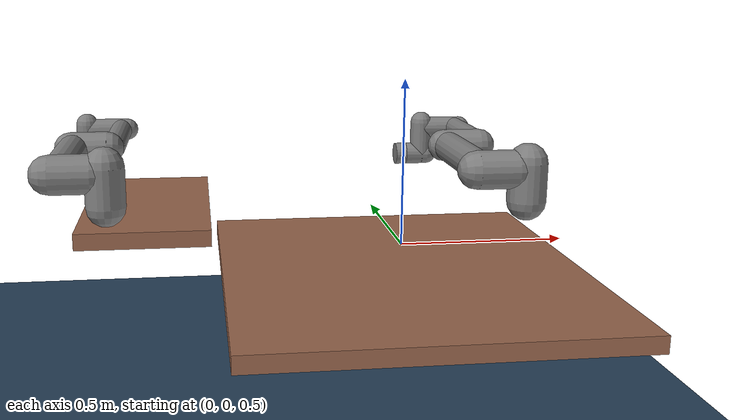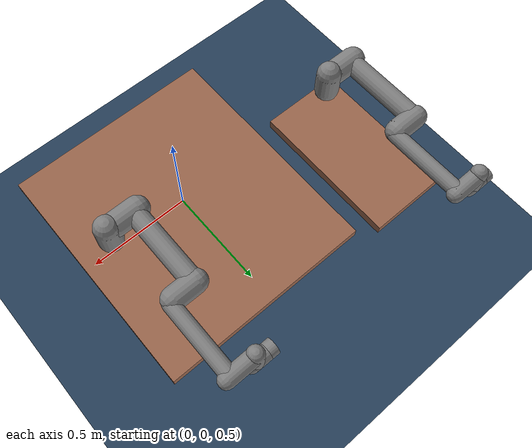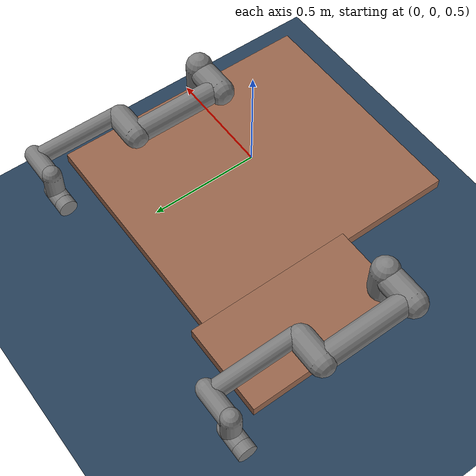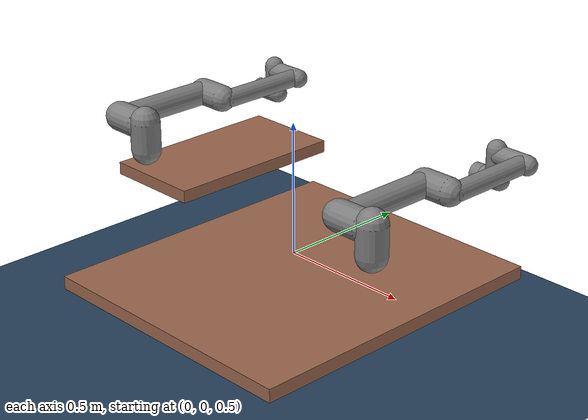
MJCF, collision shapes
<mujoco model="ur5e scene">
    <include file="ur5e_1.xml"/>
    <include file="ur5e_2.xml"/>

    <statistic center="0.3 0 0.4" extent="0.8"/>

    <visual>
        <headlight diffuse="0.6 0.6 0.6" ambient="0.1 0.1 0.1" specular="0 0 0"/>
        <rgba haze="0.15 0.25 0.35 1"/>
        <global azimuth="120" elevation="-20"/>
    </visual>

    <asset>
        <texture type="skybox" builtin="gradient" rgb1="0.3 0.5 0.7" rgb2="0 0 0" width="512" height="3072"/>
        <texture type="2d" name="groundplane" builtin="checker" mark="edge" rgb1="0.2 0.3 0.4" rgb2="0.1 0.2 0.3"
        markrgb="0.8 0.8 0.8" width="300" height="300"/>
        <material name="groundplane" texture="groundplane" texuniform="true" texrepeat="5 5" reflectance="0.2"/>
    </asset>

    <worldbody>
        <light pos="0 0 1.5" dir="0 0 -1" directional="true"/>
        <geom name="floor" size="0 0 0.05" type="plane" material="groundplane"/>
    </worldbody>

    <keyframe>
        <key name="home" qpos="-1.5708 -1.5708 1.5708 -1.5708 -1.5708 0 -1.5708 -1.5708 1.5708 -1.5708 -1.5708 0"
            ctrl="0 0 0 0 0 0 0 0 0 0 0 0"/>
    </keyframe>
</mujoco>

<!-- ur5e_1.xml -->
<mujoco model="ur5e_1">
  <compiler angle="radian" meshdir="assets" autolimits="true"/>

  <option integrator="implicitfast"/>

  <default>
    <default class="ur5e_1">
      <material specular="0.5" shininess="0.25"/>
      <joint axis="0 1 0" range="-6.28319 6.28319" armature="0.1"/>
      <general gaintype="fixed" biastype="affine" ctrlrange="-6.2831 6.2831" gainprm="2000" biasprm="0 -2000 -400"
        forcerange="-150 150"/>
      <default class="size3_1">
        <default class="size3_limited_1">
          <joint range="-3.1415 3.1415"/>
          <general ctrlrange="-3.1415 3.1415"/>
        </default>
      </default>
      <default class="size1_1">
        <general gainprm="500" biasprm="0 -500 -100" forcerange="-28 28"/>
      </default>
      <default class="visual_1">
        <geom type="mesh" contype="0" conaffinity="0" group="2"/>
      </default>
      <default class="collision_1">
        <geom type="capsule" group="3"/>
        <default class="eef_collision_1">
          <geom type="cylinder"/>
        </default>
      </default>
      <site size="0.001" rgba="0.5 0.5 0.5 0.3" group="4"/>
    </default>
  </default>

  <asset>
    <material class="ur5e_1" name="black_1" rgba="0.033 0.033 0.033 1"/>
    <material class="ur5e_1" name="jointgray_1" rgba="0.278 0.278 0.278 1"/>
    <material class="ur5e_1" name="linkgray_1" rgba="0.82 0.82 0.82 1"/>
    <material class="ur5e_1" name="urblue_1" rgba="0.49 0.678 0.8 1"/>

    <mesh name="base_0_1" file="base_0.obj"/>
    <mesh name="base_1_1" file="base_1.obj"/>
    <mesh name="shoulder_0_1" file="shoulder_0.obj"/>
    <mesh name="shoulder_1_1" file="shoulder_1.obj"/>
    <mesh name="shoulder_2_1" file="shoulder_2.obj"/>
    <mesh name="upperarm_0_1" file="upperarm_0.obj"/>
    <mesh name="upperarm_1_1" file="upperarm_1.obj"/>
    <mesh name="upperarm_2_1" file="upperarm_2.obj"/>
    <mesh name="upperarm_3_1" file="upperarm_3.obj"/>
    <mesh name="forearm_0_1" file="forearm_0.obj"/>
    <mesh name="forearm_1_1" file="forearm_1.obj"/>
    <mesh name="forearm_2_1" file="forearm_2.obj"/>
    <mesh name="forearm_3_1" file="forearm_3.obj"/>
    <mesh name="wrist1_0_1" file="wrist1_0.obj"/>
    <mesh name="wrist1_1_1" file="wrist1_1.obj"/>
    <mesh name="wrist1_2_1" file="wrist1_2.obj"/>
    <mesh name="wrist2_0_1" file="wrist2_0.obj"/>
    <mesh name="wrist2_1_1" file="wrist2_1.obj"/>
    <mesh name="wrist2_2_1" file="wrist2_2.obj"/>
    <mesh name="wrist3_1" file="wrist3.obj"/>
  </asset>

  <worldbody>
    <light name="spotlight_1" mode="targetbodycom" target="wrist_2_link_1" pos="0 -1 2"/>
    <body name="table_1" pos="0 0 0.4">
      <geom name="table_geom_1" type="box" size="0.546 0.625 0.025" rgba="0.6 0.4 0.3 1"/>
      <body name="base_1" quat="1 0 0 1" childclass="ur5e_1" pos="0.386 0 0.161">
        <inertial mass="4.0" pos="0 0 0" diaginertia="0.00443333156 0.00443333156 0.0072"/>
        <geom mesh="base_0_1" material="black_1" class="visual_1"/>
        <geom mesh="base_1_1" material="jointgray_1" class="visual_1"/>
        <body name="shoulder_link_1" pos="0 0 0.163">
          <inertial mass="3.7" pos="0 0 0" diaginertia="0.0102675 0.0102675 0.00666"/>
          <joint name="shoulder_pan_joint_1" class="size3_1" axis="0 0 1"/>
          <geom mesh="shoulder_0_1" material="urblue_1" class="visual_1"/>
          <geom mesh="shoulder_1_1" material="black_1" class="visual_1"/>
          <geom mesh="shoulder_2_1" material="jointgray_1" class="visual_1"/>
          <geom class="collision_1" size="0.06 0.06" pos="0 0 -0.04"/>
          <body name="upper_arm_link_1" pos="0 0.138 0" quat="1 0 1 0">
            <inertial mass="8.393" pos="0 0 0.2125" diaginertia="0.133886 0.133886 0.0151074"/>
            <joint name="shoulder_lift_joint_1" class="size3_1"/>
            <geom mesh="upperarm_0_1" material="linkgray_1" class="visual_1"/>
            <geom mesh="upperarm_1_1" material="black_1" class="visual_1"/>
            <geom mesh="upperarm_2_1" material="jointgray_1" class="visual_1"/>
            <geom mesh="upperarm_3_1" material="urblue_1" class="visual_1"/>
            <geom class="collision_1" pos="0 -0.04 0" quat="1 1 0 0" size="0.06 0.06"/>
            <geom class="collision_1" size="0.05 0.2" pos="0 0 0.2"/>
            <body name="forearm_link_1" pos="0 -0.131 0.425">
              <inertial mass="2.275" pos="0 0 0.196" diaginertia="0.0311796 0.0311796 0.004095"/>
              <joint name="elbow_joint_1" class="size3_limited_1"/>
              <geom mesh="forearm_0_1" material="urblue_1" class="visual_1"/>
              <geom mesh="forearm_1_1" material="linkgray_1" class="visual_1"/>
              <geom mesh="forearm_2_1" material="black_1" class="visual_1"/>
              <geom mesh="forearm_3_1" material="jointgray_1" class="visual_1"/>
              <geom class="collision_1" pos="0 0.08 0" quat="1 1 0 0" size="0.055 0.06"/>
              <geom class="collision_1" size="0.038 0.19" pos="0 0 0.2"/>
              <body name="wrist_1_link_1" pos="0 0 0.392" quat="1 0 1 0">
                <inertial mass="1.219" pos="0 0.127 0" diaginertia="0.0025599 0.0025599 0.0021942"/>
                <joint name="wrist_1_joint_1" class="size1_1"/>
                <geom mesh="wrist1_0_1" material="black_1" class="visual_1"/>
                <geom mesh="wrist1_1_1" material="urblue_1" class="visual_1"/>
                <geom mesh="wrist1_2_1" material="jointgray_1" class="visual_1"/>
                <geom class="collision_1" pos="0 0.05 0" quat="1 1 0 0" size="0.04 0.07"/>
                <body name="wrist_2_link_1" pos="0 0.127 0">
                  <inertial mass="1.219" pos="0 0 0.1" diaginertia="0.0025599 0.0025599 0.0021942"/>
                  <joint name="wrist_2_joint_1" axis="0 0 1" class="size1_1"/>
                  <geom mesh="wrist2_0_1" material="black_1" class="visual_1"/>
                  <geom mesh="wrist2_1_1" material="urblue_1" class="visual_1"/>
                  <geom mesh="wrist2_2_1" material="jointgray_1" class="visual_1"/>
                  <geom class="collision_1" size="0.04 0.06" pos="0 0 0.04"/>
                  <geom class="collision_1" pos="0 0.02 0.1" quat="1 1 0 0" size="0.04 0.04"/>
                  <body name="wrist_3_link_1" pos="0 0 0.1">
                    <inertial mass="0.1889" pos="0 0.0771683 0" quat="1 0 0 1"
                      diaginertia="0.000132134 9.90863e-05 9.90863e-05"/>
                    <joint name="wrist_3_joint_1" class="size1_1"/>
                    <geom material="linkgray_1" mesh="wrist3_1" class="visual_1"/>
                    <geom class="eef_collision_1" pos="0 0.08 0" quat="1 1 0 0" size="0.04 0.02"/>
                    <site name="attachment_site_1" pos="0 0.1 0" quat="-1 1 0 0"/>
                  </body>
                </body>
              </body>
            </body>
          </body>
        </body>
      </body>
    </body>
  </worldbody>

  <actuator>
    <general class="size3_1" name="shoulder_pan_1" joint="shoulder_pan_joint_1"/>
    <general class="size3_1" name="shoulder_lift_1" joint="shoulder_lift_joint_1"/>
    <general class="size3_limited_1" name="elbow_1" joint="elbow_joint_1"/>
    <general class="size1_1" name="wrist_1_1" joint="wrist_1_joint_1"/>
    <general class="size1_1" name="wrist_2_1" joint="wrist_2_joint_1"/>
    <general class="size1_1" name="wrist_3_1" joint="wrist_3_joint_1"/>
  </actuator>

</mujoco>

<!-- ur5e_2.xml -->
<mujoco model="ur5e_2">
  <compiler angle="radian" meshdir="assets" autolimits="true"/>

  <option integrator="implicitfast"/>

  <default>
    <default class="ur5e_2">
      <material specular="0.5" shininess="0.25"/>
      <joint axis="0 1 0" range="-6.28319 6.28319" armature="0.1"/>
      <general gaintype="fixed" biastype="affine" ctrlrange="-6.2831 6.2831" gainprm="2000" biasprm="0 -2000 -400"
        forcerange="-150 150"/>
      <default class="size3_2">
        <default class="size3_limited_2">
          <joint range="-3.1415 3.1415"/>
          <general ctrlrange="-3.1415 3.1415"/>
        </default>
      </default>
      <default class="size1_2">
        <general gainprm="500" biasprm="0 -500 -100" forcerange="-28 28"/>
      </default>
      <default class="visual_2">
        <geom type="mesh" contype="0" conaffinity="0" group="2"/>
      </default>
      <default class="collision_2">
        <geom type="capsule" group="3"/>
        <default class="eef_collision_2">
          <geom type="cylinder"/>
        </default>
      </default>
      <site size="0.001" rgba="0.5 0.5 0.5 0.3" group="4"/>
    </default>
  </default>

  <asset>
    <material class="ur5e_2" name="black_2" rgba="0.033 0.033 0.033 1"/>
    <material class="ur5e_2" name="jointgray_2" rgba="0.278 0.278 0.278 1"/>
    <material class="ur5e_2" name="linkgray_2" rgba="0.82 0.82 0.82 1"/>
    <material class="ur5e_2" name="urblue_2" rgba="0.49 0.678 0.8 1"/>

    <mesh name="base_0_2" file="base_0.obj"/>
    <mesh name="base_1_2" file="base_1.obj"/>
    <mesh name="shoulder_0_2" file="shoulder_0.obj"/>
    <mesh name="shoulder_1_2" file="shoulder_1.obj"/>
    <mesh name="shoulder_2_2" file="shoulder_2.obj"/>
    <mesh name="upperarm_0_2" file="upperarm_0.obj"/>
    <mesh name="upperarm_1_2" file="upperarm_1.obj"/>
    <mesh name="upperarm_2_2" file="upperarm_2.obj"/>
    <mesh name="upperarm_3_2" file="upperarm_3.obj"/>
    <mesh name="forearm_0_2" file="forearm_0.obj"/>
    <mesh name="forearm_1_2" file="forearm_1.obj"/>
    <mesh name="forearm_2_2" file="forearm_2.obj"/>
    <mesh name="forearm_3_2" file="forearm_3.obj"/>
    <mesh name="wrist1_0_2" file="wrist1_0.obj"/>
    <mesh name="wrist1_1_2" file="wrist1_1.obj"/>
    <mesh name="wrist1_2_2" file="wrist1_2.obj"/>
    <mesh name="wrist2_0_2" file="wrist2_0.obj"/>
    <mesh name="wrist2_1_2" file="wrist2_1.obj"/>
    <mesh name="wrist2_2_2" file="wrist2_2.obj"/>
    <mesh name="wrist3_2" file="wrist3.obj"/>
  </asset>
  <worldbody>
    <light name="spotlight_2" mode="targetbodycom" target="wrist_2_link_2" pos="0 -1 2"/>
    <body name="table_2" pos="-0.776 0.342 0.545">
      <geom name="table_geom_2" type="box" size="0.2 0.375 0.025" rgba="0.6 0.4 0.3 1"/>
      <body name="base_2" quat="1 0 0 1" childclass="ur5e_2" pos="-0.107 -0.31 0.025">
        <inertial mass="4.0" pos="0 0 0" diaginertia="0.00443333156 0.00443333156 0.0072"/>
        <geom mesh="base_0_2" material="black_2" class="visual_2"/>
        <geom mesh="base_1_2" material="jointgray_2" class="visual_2"/>
        <body name="shoulder_link_2" pos="0 0 0.163">
          <inertial mass="3.7" pos="0 0 0" diaginertia="0.0102675 0.0102675 0.00666"/>
          <joint name="shoulder_pan_joint_2" class="size3_2" axis="0 0 1"/>
          <geom mesh="shoulder_0_2" material="urblue_2" class="visual_2"/>
          <geom mesh="shoulder_1_2" material="black_2" class="visual_2"/>
          <geom mesh="shoulder_2_2" material="jointgray_2" class="visual_2"/>
          <geom class="collision_2" size="0.06 0.06" pos="0 0 -0.04"/>
          <body name="upper_arm_link_2" pos="0 0.138 0" quat="1 0 1 0">
            <inertial mass="8.393" pos="0 0 0.2125" diaginertia="0.133886 0.133886 0.0151074"/>
            <joint name="shoulder_lift_joint_2" class="size3_2"/>
            <geom mesh="upperarm_0_2" material="linkgray_2" class="visual_2"/>
            <geom mesh="upperarm_1_2" material="black_2" class="visual_2"/>
            <geom mesh="upperarm_2_2" material="jointgray_2" class="visual_2"/>
            <geom mesh="upperarm_3_2" material="urblue_2" class="visual_2"/>
            <geom class="collision_2" pos="0 -0.04 0" quat="1 1 0 0" size="0.06 0.06"/>
            <geom class="collision_2" size="0.05 0.2" pos="0 0 0.2"/>
            <body name="forearm_link_2" pos="0 -0.131 0.425">
              <inertial mass="2.275" pos="0 0 0.196" diaginertia="0.0311796 0.0311796 0.004095"/>
              <joint name="elbow_joint_2" class="size3_limited_2"/>
              <geom mesh="forearm_0_2" material="urblue_2" class="visual_2"/>
              <geom mesh="forearm_1_2" material="linkgray_2" class="visual_2"/>
              <geom mesh="forearm_2_2" material="black_2" class="visual_2"/>
              <geom mesh="forearm_3_2" material="jointgray_2" class="visual_2"/>
              <geom class="collision_2" pos="0 0.08 0" quat="1 1 0 0" size="0.055 0.06"/>
              <geom class="collision_2" size="0.038 0.19" pos="0 0 0.2"/>
              <body name="wrist_1_link_2" pos="0 0 0.392" quat="1 0 1 0">
                <inertial mass="1.219" pos="0 0.127 0" diaginertia="0.0025599 0.0025599 0.0021942"/>
                <joint name="wrist_1_joint_2" class="size1_2"/>
                <geom mesh="wrist1_0_2" material="black_2" class="visual_2"/>
                <geom mesh="wrist1_1_2" material="urblue_2" class="visual_2"/>
                <geom mesh="wrist1_2_2" material="jointgray_2" class="visual_2"/>
                <geom class="collision_2" pos="0 0.05 0" quat="1 1 0 0" size="0.04 0.07"/>
                <body name="wrist_2_link_2" pos="0 0.127 0">
                  <inertial mass="1.219" pos="0 0 0.1" diaginertia="0.0025599 0.0025599 0.0021942"/>
                  <joint name="wrist_2_joint_2" axis="0 0 1" class="size1_2"/>
                  <geom mesh="wrist2_0_2" material="black_2" class="visual_2"/>
                  <geom mesh="wrist2_1_2" material="urblue_2" class="visual_2"/>
                  <geom mesh="wrist2_2_2" material="jointgray_2" class="visual_2"/>
                  <geom class="collision_2" size="0.04 0.06" pos="0 0 0.04"/>
                  <geom class="collision_2" pos="0 0.02 0.1" quat="1 1 0 0" size="0.04 0.04"/>
                  <body name="wrist_3_link_2" pos="0 0 0.1">
                    <inertial mass="0.1889" pos="0 0.0771683 0" quat="1 0 0 1"
                      diaginertia="0.000132134 9.90863e-05 9.90863e-05"/>
                    <joint name="wrist_3_joint_2" class="size1_2"/>
                    <geom material="linkgray_2" mesh="wrist3_2" class="visual_2"/>
                    <geom class="eef_collision_2" pos="0 0.08 0" quat="1 1 0 0" size="0.04 0.02"/>
                    <site name="attachment_site_2" pos="0 0.1 0" quat="-1 1 0 0"/>
                  </body>
                </body>
              </body>
            </body>
          </body>
        </body>
      </body>
    </body>
  </worldbody>

  <actuator>
    <general class="size3_2" name="shoulder_pan_2" joint="shoulder_pan_joint_2"/>
    <general class="size3_2" name="shoulder_lift_2" joint="shoulder_lift_joint_2"/>
    <general class="size3_limited_2" name="elbow_2" joint="elbow_joint_2"/>
    <general class="size1_2" name="wrist_1_2" joint="wrist_1_joint_2"/>
    <general class="size1_2" name="wrist_2_2" joint="wrist_2_joint_2"/>
    <general class="size1_2" name="wrist_3_2" joint="wrist_3_joint_2"/>
  </actuator>

</mujoco>
